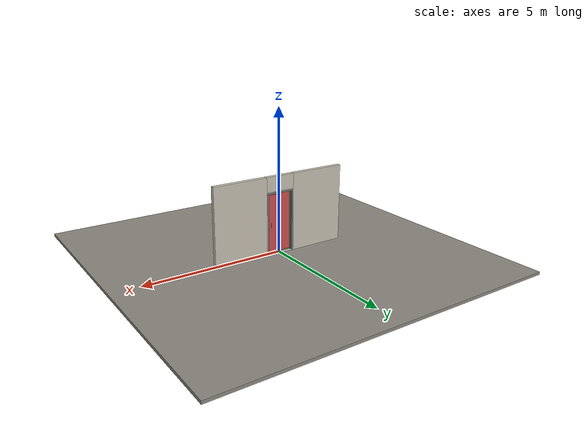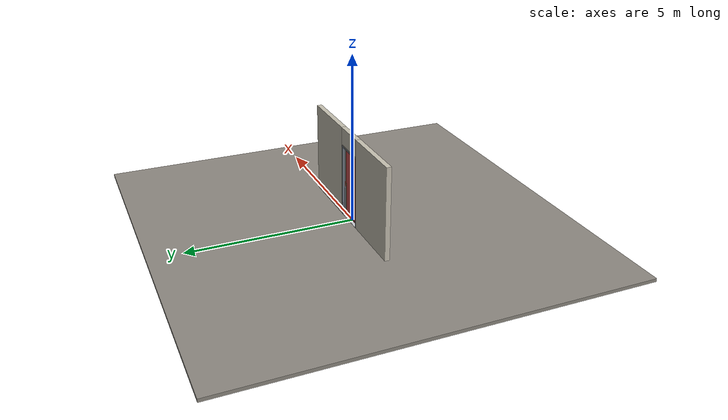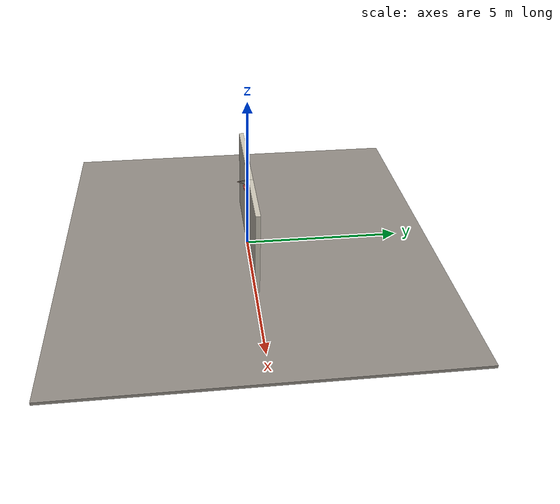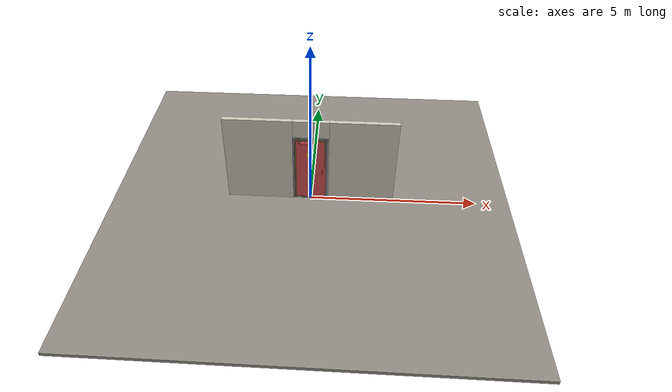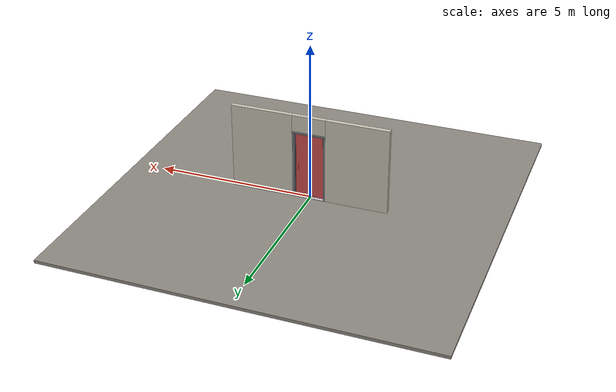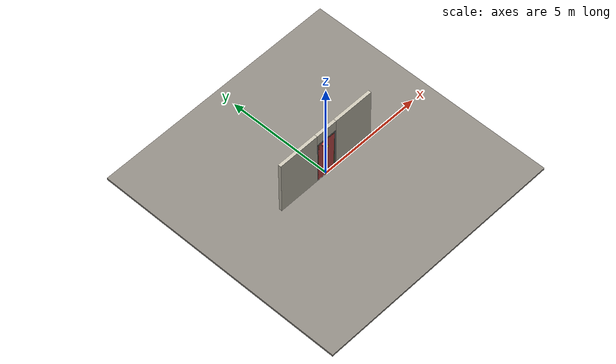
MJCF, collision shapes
<?xml version="1.0" ?>
<mujoco model="db0543_swing_single_full">
  <compiler angle="radian" meshdir="../../hardware" texturedir="../../textures" autolimits="true" inertiafromgeom="false"/>
  <option timestep="0.002" integrator="implicitfast" cone="elliptic" impratio="10" noslip_iterations="3">
    <flag multiccd="enable"/>
  </option>
  <size memory="16M"/>
  <default>
    <geom condim="4" solref="0.005 1" solimp="0.95 0.99 0.001"/>
    <joint solreflimit="0.005 1" solimplimit="0.95 0.99 0.001"/>
    <tendon solreflimit="0.005 1"/>
    <equality solref="0.002 1"/>
  </default>
  <visual>
    <headlight ambient="0.4 0.4 0.4" diffuse="0.7 0.7 0.7" specular="0.2 0.2 0.2"/>
    <quality shadowsize="4096"/>
    <map znear="0.01" zfar="60"/>
  </visual>
  <asset>
    <mesh name="closer_body_b226fdb10b" file="closer_body_b226fdb10b.obj"/>
    <mesh name="hinge_e22b26c0c1" file="hinge_e22b26c0c1.obj"/>
    <mesh name="hinge_jamb_e1d088f8dc" file="hinge_jamb_e1d088f8dc.obj"/>
    <mesh name="pull_1e5d69a91a" file="pull_1e5d69a91a.obj"/>
    <material name="mat_floor" rgba="0.55 0.53 0.5 1" specular="0.2" shininess="0.15" reflectance="0"/>
    <material name="mat_wall" rgba="0.78 0.76 0.7 1" specular="0.2" shininess="0.1" reflectance="0"/>
    <material name="mat_leaf" rgba="0.4 0.42 0.22 1" specular="0.23" shininess="0.5" reflectance="0.02"/>
    <material name="mat_mesh_infill" rgba="0.6 0.62 0.64 0.55" specular="0.68" shininess="0.3" reflectance="0.1"/>
    <material name="mat_hinge" rgba="0.65 0.66 0.68 1" specular="0.74" shininess="0.5" reflectance="0.36"/>
    <material name="mat_op_stainless" rgba="0.75 0.76 0.77 1" specular="0.8" shininess="0.65" reflectance="0.4"/>
    <material name="mat_frame" rgba="0.45 0.48 0.52 1" specular="0.32" shininess="0.6" reflectance="0.08"/>
    <material name="mat_seal" rgba="0.1 0.1 0.1 1" specular="0.2" shininess="0.1" reflectance="0"/>
    <material name="mat_threshold" rgba="0.8 0.81 0.83 1" specular="0.8" shininess="0.6" reflectance="0.4"/>
    <material name="mat_closer" rgba="0.22 0.17 0.13 1" specular="0.8" shininess="0.6" reflectance="0.4"/>
    <material name="mat_placard" rgba="0.95 0.75 0.05 1" specular="0.2" shininess="0.5" reflectance="0"/>
    <texture name="skybox" type="skybox" builtin="gradient" rgb1="0.6 0.7 0.85" rgb2="0.9 0.92 0.95" width="256" height="256"/>
  </asset>
  <worldbody>
    <light name="sun" pos="1.5 -2.5 4" dir="-0.3 0.5 -0.8" directional="true" diffuse="0.8 0.8 0.8" specular="0.3 0.3 0.3" castshadow="true"/>
    <light name="fill" pos="-1.5 2.5 3" dir="0.3 -0.5 -0.7" directional="true" diffuse="0.35 0.35 0.4" castshadow="false"/>
    <camera name="robot_view" pos="0 -2.594313 1.812087" xyaxes="1 0 0 0 0.26963 0.962964" fovy="52"/>
    <camera name="far_view" pos="0 2.681312 1.812087" xyaxes="-1 0 0 0 -0.26963 0.962964" fovy="52"/>
    <camera name="iso" pos="2.004737 -2.172262 2.234138" xyaxes="0.741536 0.670913 0 -0.242917 0.268487 0.932151" fovy="46"/>
    <camera name="detail_handle" pos="0.5315 -0.882 1.32" xyaxes="0.97561 0.219512 0 -0.070934 0.315262 0.94635" fovy="38"/>
    <geom name="floor" type="box" size="6 6 0.05" pos="0 0 -0.05" material="mat_floor" group="0" contype="1" conaffinity="1" friction="0.8 0.005 0.0001" density="2400"/>
    <geom name="wall_left" type="box" size="0.99475 0.0725 1.3735" pos="-1.50525 0.0435 1.3735" material="mat_wall" group="0" contype="1" conaffinity="1" friction="0.6 0.005 0.0001" density="800"/>
    <geom name="wall_right" type="box" size="0.97975 0.0725 1.3735" pos="1.52025 0.0435 1.3735" material="mat_wall" group="0" contype="1" conaffinity="1" friction="0.6 0.005 0.0001" density="800"/>
    <geom name="wall_header" type="box" size="0.5255 0.0725 0.26" pos="0.015 0.0435 2.487" material="mat_wall" group="0" contype="1" conaffinity="1" friction="0.6 0.005 0.0001" density="800"/>
    <geom name="hinge_0_jamb" type="mesh" mesh="hinge_jamb_e1d088f8dc" pos="-0.4575 -0.029 0.267" material="mat_hinge" group="1" contype="0" conaffinity="0" density="7850"/>
    <geom name="hinge_1_jamb" type="mesh" mesh="hinge_jamb_e1d088f8dc" pos="-0.4575 -0.029 1.08" material="mat_hinge" group="1" contype="0" conaffinity="0" density="7850"/>
    <geom name="hinge_2_jamb" type="mesh" mesh="hinge_jamb_e1d088f8dc" pos="-0.4575 -0.029 1.963" material="mat_hinge" group="1" contype="0" conaffinity="0" density="7850"/>
    <geom name="jamb_hinge" type="box" size="0.025 0.0725 1.0735" pos="-0.4855 0.0435 1.0735" material="mat_frame" group="0" contype="1" conaffinity="1" friction="0.6 0.005 0.0001" density="300"/>
    <geom name="jamb_strike" type="box" size="0.025 0.0725 1.0735" pos="0.4855 0.0435 1.0735" material="mat_frame" group="0" contype="1" conaffinity="1" friction="0.6 0.005 0.0001" density="300"/>
    <geom name="stud_strike" type="box" size="0.015 0.0725 1.0735" pos="0.5255 0.0435 1.0735" material="mat_wall" group="0" contype="1" conaffinity="1" friction="0.6 0.005 0.0001" density="500"/>
    <geom name="jamb_head" type="box" size="0.5255 0.0725 0.025" pos="0.015 0.0435 2.172" material="mat_frame" group="0" contype="1" conaffinity="1" friction="0.6 0.005 0.0001" density="300"/>
    <geom name="head_stud" type="box" size="0.5255 0.0725 0.015" pos="0.015 0.0435 2.212" material="mat_wall" group="0" contype="1" conaffinity="1" friction="0.6 0.005 0.0001" density="500"/>
    <geom name="stop_hinge" type="box" size="0.0055 0.016 1.0735" pos="-0.455 0.0385 1.0735" material="mat_frame" group="0" contype="1" conaffinity="1" friction="0.6 0.005 0.0001" density="300"/>
    <geom name="stop_strike" type="box" size="0.0055 0.016 1.0735" pos="0.455 0.0385 1.0735" material="mat_frame" group="0" contype="1" conaffinity="1" friction="0.6 0.005 0.0001" density="300"/>
    <geom name="stop_head" type="box" size="0.4605 0.016 0.0055" pos="0 0.0385 2.1415" material="mat_frame" group="0" contype="1" conaffinity="1" friction="0.6 0.005 0.0001" density="300"/>
    <geom name="seal_hinge" type="box" size="0.004 0.004 1.0735" pos="-0.4575 0.026 1.0735" material="mat_seal" group="1" contype="0" conaffinity="0" density="1100"/>
    <geom name="seal_strike" type="box" size="0.004 0.004 1.0735" pos="0.4575 0.026 1.0735" material="mat_seal" group="1" contype="0" conaffinity="0" density="1100"/>
    <geom name="seal_head" type="box" size="0.4405 0.004 0.008" pos="0 0.026 2.135" material="mat_seal" group="1" contype="0" conaffinity="0" density="1100"/>
    <geom name="threshold" type="box" size="0.5105 0.0725 0.0065" pos="0 0.0435 0.0065" material="mat_threshold" group="0" contype="1" conaffinity="1" friction="0.5 0.005 0.0001" density="2700"/>
    <geom name="closer_bracket" type="box" size="0.03 0.012 0.014" pos="-0.3605 -0.041 2.177" material="mat_closer" group="1" contype="0" conaffinity="0" density="2700"/>
    <site name="approach_point" pos="0 -1.5 0" quat="1 0 0 0" size="0.05" rgba="0.2 0.9 0.2 0.5" group="4"/>
    <site name="goal_point" pos="0 1.5 0" quat="1 0 0 0" size="0.05" rgba="0.2 0.9 0.2 0.5" group="4"/>
    <site name="door_plane_center" pos="0 0 1.0735" quat="1 0 0 0" size="0.02" rgba="0.2 0.9 0.2 0.5" group="4"/>
    <body name="leaf" pos="-0.4605 0 0">
      <inertial pos="0.437436 -0.008903 1.215158" mass="51.681637" quat="-0.494642 0.479158 0.51226 0.513153" diaginertia="3.401813954 22.398914819 25.73601482"/>
      <joint name="leaf_hinge" type="hinge" axis="0 0 -1" pos="0.003 -0.029 0" limited="true" range="0 1.745329" solreflimit="0.02 1" damping="10.268966" frictionloss="7.122525" stiffness="11.681973" springref="-1.849003" armature="0.02"/>
      <geom name="leaf_slab_col" type="box" size="0.457 0.022 1.063" pos="0.46 0 1.08" material="mat_leaf" group="3" contype="1" conaffinity="1" rgba="0.8 0.3 0.3 0.25" friction="0.42 0.005 0.0001" density="1"/>
      <geom name="leaf_rail_b" type="box" size="0.457 0.022 0.0225" pos="0.46 0 0.0395" material="mat_leaf" group="1" contype="0" conaffinity="0" density="1"/>
      <geom name="leaf_rail_t" type="box" size="0.457 0.022 0.0225" pos="0.46 0 2.1205" material="mat_leaf" group="1" contype="0" conaffinity="0" density="1"/>
      <geom name="leaf_stile_h" type="box" size="0.0225 0.022 1.063" pos="0.0255 0 1.08" material="mat_leaf" group="1" contype="0" conaffinity="0" density="1"/>
      <geom name="leaf_stile_l" type="box" size="0.0225 0.022 1.063" pos="0.8945 0 1.08" material="mat_leaf" group="1" contype="0" conaffinity="0" density="1"/>
      <geom name="leaf_mesh" type="box" size="0.412 0.0015 1.018" pos="0.46 0 1.08" material="mat_mesh_infill" group="1" contype="0" conaffinity="0" density="1"/>
      <geom name="hinge_0" type="mesh" mesh="hinge_e22b26c0c1" pos="0.003 -0.029 0.267" material="mat_hinge" group="1" contype="0" conaffinity="0" density="7850"/>
      <geom name="hinge_1" type="mesh" mesh="hinge_e22b26c0c1" pos="0.003 -0.029 1.08" material="mat_hinge" group="1" contype="0" conaffinity="0" density="7850"/>
      <geom name="hinge_2" type="mesh" mesh="hinge_e22b26c0c1" pos="0.003 -0.029 1.963" material="mat_hinge" group="1" contype="0" conaffinity="0" density="7850"/>
      <geom name="leaf_pull_n" type="mesh" mesh="pull_1e5d69a91a" pos="0.812 -0.022 1.04" quat="0.707107 0.707107 0 0" material="mat_op_stainless" group="1" contype="0" conaffinity="0" density="3000"/>
      <geom name="leaf_pull_col_n" type="capsule" size="0.0095 0.08" pos="0.812 -0.082 1.04" material="mat_op_stainless" group="3" contype="1" conaffinity="1" rgba="0.8 0.3 0.3 0.25" friction="0.7 0.01 0.0001" density="3000"/>
      <geom name="leaf_pull_p" type="mesh" mesh="pull_1e5d69a91a" pos="0.812 0.022 1.04" quat="-0.707107 0.707107 0 0" material="mat_op_stainless" group="1" contype="0" conaffinity="0" density="3000"/>
      <geom name="leaf_pull_col_p" type="capsule" size="0.0095 0.08" pos="0.812 0.082 1.04" material="mat_op_stainless" group="3" contype="1" conaffinity="1" rgba="0.8 0.3 0.3 0.25" friction="0.7 0.01 0.0001" density="3000"/>
      <geom name="closer_body" type="mesh" mesh="closer_body_b226fdb10b" pos="0.3 -0.022 2.046" quat="0.707107 0.707107 0 0" material="mat_closer" group="1" contype="0" conaffinity="0" density="2000"/>
      <geom name="closer_body_col" type="box" size="0.12 0.04 0.03" pos="0.3 -0.062 2.046" material="mat_closer" group="3" contype="1" conaffinity="1" rgba="0.8 0.3 0.3 0.25" friction="0.6 0.005 0.0001" density="2000"/>
      <geom name="closer_pinion_shaft" type="cylinder" size="0.008 0.0655" pos="0.3 -0.064 2.1115" material="mat_closer" group="1" contype="0" conaffinity="0" density="2700"/>
      <geom name="warning_placard" type="box" size="0.11 0.001 0.08" pos="0.46 -0.023 1.6115" material="mat_placard" group="2" contype="0" conaffinity="0" density="1000"/>
      <site name="leaf_pull_grip_n" pos="0.812 -0.082 1.04" quat="1 0 0 0" size="0.012" rgba="0.2 0.9 0.2 0.5" group="4"/>
      <site name="leaf_pull_grip_p" pos="0.812 0.082 1.04" quat="1 0 0 0" size="0.012" rgba="0.2 0.9 0.2 0.5" group="4"/>
      <site name="leaf_edge_mid" pos="0.917 0 1.063" quat="1 0 0 0" size="0.02" rgba="0.2 0.9 0.2 0.5" group="4"/>
      <body name="closer_arm_main" pos="0.3 -0.064 2.177" quat="0.472212 0 0 -0.881485">
        <inertial pos="0.14 0 0" mass="0.12096" quat="1 0 0 0" diaginertia="0.000003588 0.00079128 0.000792852"/>
        <joint name="closer_pinion" type="hinge" axis="0 0 1" limited="false" damping="0.01" armature="0.002"/>
        <geom name="closer_arm_main_geom" type="box" size="0.14 0.008 0.005" pos="0.14 0 0" material="mat_closer" group="1" contype="0" conaffinity="0" density="2700"/>
        <body name="closer_arm_fore" pos="0.28 0 0" quat="-0.371222 0 0 0.928544">
          <inertial pos="0.128088 0 0" mass="0.076531" quat="1 0 0 0" diaginertia="0.000001771 0.000437665 0.000438201"/>
          <joint name="closer_elbow" type="hinge" axis="0 0 1" limited="false" damping="0.01" armature="0.002"/>
          <geom name="closer_arm_fore_geom" type="box" size="0.1125 0.007 0.004" pos="0.1125 0 0" material="mat_closer" group="1" contype="0" conaffinity="0" density="2700"/>
          <geom name="closer_fore_neck" type="box" size="0.0175 0.003 0.003" pos="0.2425 0 0" material="mat_closer" group="1" contype="0" conaffinity="0" density="2700"/>
          <geom name="closer_fore_pivot" type="cylinder" size="0.005 0.012" pos="0.26 0 0" material="mat_closer" group="1" contype="0" conaffinity="0" density="2700"/>
        </body>
      </body>
    </body>
  </worldbody>
  <equality>
    <connect name="closer_arm_connect" body1="closer_arm_fore" body2="world" anchor="0.26 0 0" active="true"/>
  </equality>
  <contact>
    <exclude body1="closer_arm_main" body2="leaf"/>
    <exclude body1="closer_arm_fore" body2="leaf"/>
    <exclude body1="closer_arm_main" body2="closer_arm_fore"/>
  </contact>
  <sensor>
    <jointpos name="leaf_hinge_pos" joint="leaf_hinge"/>
    <jointvel name="leaf_hinge_vel" joint="leaf_hinge"/>
  </sensor>
</mujoco>
